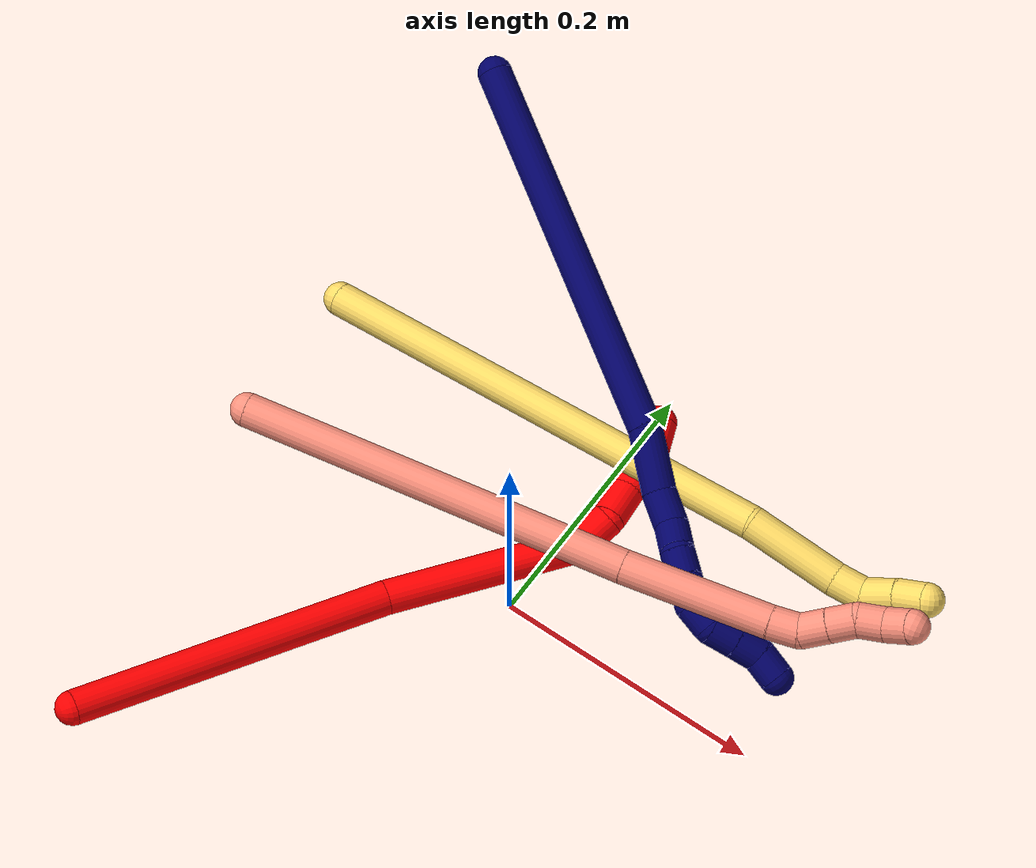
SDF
<sdf version="1.7">
 <world name="default">
  <model name="2">
   <static>0</static>
   <link name="2">
    <collision name="collision-cylinder-e_1_1_4">
     <pose>0.003135 0.002374 -0.119457 -3.12172 0.026232 -1.84513</pose>
     <geometry><cylinder><radius>0.0125</radius><length>0.239044</length></cylinder></geometry>
     <surface>
      <friction><ode><mu>1.16</mu><mu2>1.16</mu2><slip1>0</slip1><slip2>0</slip2></ode></friction>
      <contact><ode><kp>1e+06</kp><kd>1</kd><max_vel>0</max_vel><min_depth>0.001</min_depth></ode></contact>
     </surface>
    </collision>
    <visual name="visual-cylinder-e_1_1_4">
     <pose>0.003135 0.002374 -0.119457 -3.12172 0.026232 -1.84513</pose>
     <geometry><cylinder><radius>0.0125</radius><length>0.239044</length></cylinder></geometry>
     <material><ambient>1 0 0 1</ambient></material>
    </visual>
    <collision name="collision-cylinder-e_2_4_5">
     <pose>0.021558 0.000633 -0.308298 3.08235 0.216504 2.60927</pose>
     <geometry><cylinder><radius>0.0125</radius><length>0.142333</length></cylinder></geometry>
     <surface>
      <friction><ode><mu>1.16</mu><mu2>1.16</mu2><slip1>0</slip1><slip2>0</slip2></ode></friction>
      <contact><ode><kp>1e+06</kp><kd>1</kd><max_vel>0</max_vel><min_depth>0.001</min_depth></ode></contact>
     </surface>
    </collision>
    <visual name="visual-cylinder-e_2_4_5">
     <pose>0.021558 0.000633 -0.308298 3.08235 0.216504 2.60927</pose>
     <geometry><cylinder><radius>0.0125</radius><length>0.142333</length></cylinder></geometry>
     <material><ambient>1 0 0 1</ambient></material>
    </visual>
    <collision name="collision-cylinder-e_3_5_6">
     <pose>0.040534 0.00211 -0.390191 -2.7212 0.26295 -1.10974</pose>
     <geometry><cylinder><radius>0.0125</radius><length>0.02838</length></cylinder></geometry>
     <surface>
      <friction><ode><mu>1.16</mu><mu2>1.16</mu2><slip1>0</slip1><slip2>0</slip2></ode></friction>
      <contact><ode><kp>1e+06</kp><kd>1</kd><max_vel>0</max_vel><min_depth>0.001</min_depth></ode></contact>
     </surface>
    </collision>
    <visual name="visual-cylinder-e_3_5_6">
     <pose>0.040534 0.00211 -0.390191 -2.7212 0.26295 -1.10974</pose>
     <geometry><cylinder><radius>0.0125</radius><length>0.02838</length></cylinder></geometry>
     <material><ambient>1 0 0 1</ambient></material>
    </visual>
    <collision name="collision-cylinder-e_4_6_7">
     <pose>0.041151 0.014997 -0.413981 -2.56757 -0.22473 0.730309</pose>
     <geometry><cylinder><radius>0.0125</radius><length>0.027562</length></cylinder></geometry>
     <surface>
      <friction><ode><mu>1.16</mu><mu2>1.16</mu2><slip1>0</slip1><slip2>0</slip2></ode></friction>
      <contact><ode><kp>1e+06</kp><kd>1</kd><max_vel>0</max_vel><min_depth>0.001</min_depth></ode></contact>
     </surface>
    </collision>
    <visual name="visual-cylinder-e_4_6_7">
     <pose>0.041151 0.014997 -0.413981 -2.56757 -0.22473 0.730309</pose>
     <geometry><cylinder><radius>0.0125</radius><length>0.027562</length></cylinder></geometry>
     <material><ambient>1 0 0 1</ambient></material>
    </visual>
    <collision name="collision-cylinder-e_5_7_8">
     <pose>0.036769 0.027801 -0.433629 -2.55933 -0.130137 0.428248</pose>
     <geometry><cylinder><radius>0.0125</radius><length>0.020207</length></cylinder></geometry>
     <surface>
      <friction><ode><mu>1.16</mu><mu2>1.16</mu2><slip1>0</slip1><slip2>0</slip2></ode></friction>
      <contact><ode><kp>1e+06</kp><kd>1</kd><max_vel>0</max_vel><min_depth>0.001</min_depth></ode></contact>
     </surface>
    </collision>
    <visual name="visual-cylinder-e_5_7_8">
     <pose>0.036769 0.027801 -0.433629 -2.55933 -0.130137 0.428248</pose>
     <geometry><cylinder><radius>0.0125</radius><length>0.020207</length></cylinder></geometry>
     <material><ambient>1 0 0 1</ambient></material>
    </visual>
    <collision name="collision-cylinder-e_6_8_9">
     <pose>0.032513 0.039798 -0.450021 -2.46173 -0.278014 0.753425</pose>
     <geometry><cylinder><radius>0.0125</radius><length>0.021462</length></cylinder></geometry>
     <surface>
      <friction><ode><mu>1.16</mu><mu2>1.16</mu2><slip1>0</slip1><slip2>0</slip2></ode></friction>
      <contact><ode><kp>1e+06</kp><kd>1</kd><max_vel>0</max_vel><min_depth>0.001</min_depth></ode></contact>
     </surface>
    </collision>
    <visual name="visual-cylinder-e_6_8_9">
     <pose>0.032513 0.039798 -0.450021 -2.46173 -0.278014 0.753425</pose>
     <geometry><cylinder><radius>0.0125</radius><length>0.021462</length></cylinder></geometry>
     <material><ambient>1 0 0 1</ambient></material>
    </visual>
    <collision name="collision-cylinder-e_7_9_2">
     <pose>0.027545 0.054251 -0.464589 -2.25842 -0.19377 0.405542</pose>
     <geometry><cylinder><radius>0.0125</radius><length>0.021012</length></cylinder></geometry>
     <surface>
      <friction><ode><mu>1.16</mu><mu2>1.16</mu2><slip1>0</slip1><slip2>0</slip2></ode></friction>
      <contact><ode><kp>1e+06</kp><kd>1</kd><max_vel>0</max_vel><min_depth>0.001</min_depth></ode></contact>
     </surface>
    </collision>
    <visual name="visual-cylinder-e_7_9_2">
     <pose>0.027545 0.054251 -0.464589 -2.25842 -0.19377 0.405542</pose>
     <geometry><cylinder><radius>0.0125</radius><length>0.021012</length></cylinder></geometry>
     <material><ambient>1 0 0 1</ambient></material>
    </visual>
    <collision name="collision-sphere-2">
     <pose>0.025522 0.062218 -0.471133 0 -0 0</pose>
     <geometry><sphere><radius>0.0125</radius></sphere></geometry>
     <surface>
      <friction><ode><mu>1.16</mu><mu2>1.16</mu2><slip1>0</slip1><slip2>0</slip2></ode></friction>
      <contact><ode><kp>1e+06</kp><kd>1</kd><max_vel>0</max_vel><min_depth>0.001</min_depth></ode></contact>
     </surface>
    </collision>
    <visual name="visual-sphere-2">
     <pose>0.025522 0.062218 -0.471133 0 -0 0</pose>
     <geometry><sphere><radius>0.0125</radius></sphere></geometry>
     <material><ambient>1 0 0 1</ambient></material>
    </visual>
    <collision name="collision-sphere-9">
     <pose>0.029568 0.046285 -0.458046 0 -0 0</pose>
     <geometry><sphere><radius>0.0125</radius></sphere></geometry>
     <surface>
      <friction><ode><mu>1.16</mu><mu2>1.16</mu2><slip1>0</slip1><slip2>0</slip2></ode></friction>
      <contact><ode><kp>1e+06</kp><kd>1</kd><max_vel>0</max_vel><min_depth>0.001</min_depth></ode></contact>
     </surface>
    </collision>
    <visual name="visual-sphere-9">
     <pose>0.029568 0.046285 -0.458046 0 -0 0</pose>
     <geometry><sphere><radius>0.0125</radius></sphere></geometry>
     <material><ambient>1 0 0 1</ambient></material>
    </visual>
    <collision name="collision-sphere-4">
     <pose>0.00627 0.004748 -0.238915 0 -0 0</pose>
     <geometry><sphere><radius>0.0125</radius></sphere></geometry>
     <surface>
      <friction><ode><mu>1.16</mu><mu2>1.16</mu2><slip1>0</slip1><slip2>0</slip2></ode></friction>
      <contact><ode><kp>1e+06</kp><kd>1</kd><max_vel>0</max_vel><min_depth>0.001</min_depth></ode></contact>
     </surface>
    </collision>
    <visual name="visual-sphere-4">
     <pose>0.00627 0.004748 -0.238915 0 -0 0</pose>
     <geometry><sphere><radius>0.0125</radius></sphere></geometry>
     <material><ambient>1 0 0 1</ambient></material>
    </visual>
    <collision name="collision-sphere-1">
     <geometry><sphere><radius>0.0125</radius></sphere></geometry>
     <surface>
      <friction><ode><mu>1.16</mu><mu2>1.16</mu2><slip1>0</slip1><slip2>0</slip2></ode></friction>
      <contact><ode><kp>1e+06</kp><kd>1</kd><max_vel>0</max_vel><min_depth>0.001</min_depth></ode></contact>
     </surface>
    </collision>
    <visual name="visual-sphere-1">
     <geometry><sphere><radius>0.0125</radius></sphere></geometry>
     <material><ambient>1 0 0 1</ambient></material>
    </visual>
    <collision name="collision-sphere-8">
     <pose>0.035458 0.03331 -0.441997 0 -0 0</pose>
     <geometry><sphere><radius>0.0125</radius></sphere></geometry>
     <surface>
      <friction><ode><mu>1.16</mu><mu2>1.16</mu2><slip1>0</slip1><slip2>0</slip2></ode></friction>
      <contact><ode><kp>1e+06</kp><kd>1</kd><max_vel>0</max_vel><min_depth>0.001</min_depth></ode></contact>
     </surface>
    </collision>
    <visual name="visual-sphere-8">
     <pose>0.035458 0.03331 -0.441997 0 -0 0</pose>
     <geometry><sphere><radius>0.0125</radius></sphere></geometry>
     <material><ambient>1 0 0 1</ambient></material>
    </visual>
    <collision name="collision-sphere-5">
     <pose>0.036845 -0.003482 -0.377681 0 -0 0</pose>
     <geometry><sphere><radius>0.0125</radius></sphere></geometry>
     <surface>
      <friction><ode><mu>1.16</mu><mu2>1.16</mu2><slip1>0</slip1><slip2>0</slip2></ode></friction>
      <contact><ode><kp>1e+06</kp><kd>1</kd><max_vel>0</max_vel><min_depth>0.001</min_depth></ode></contact>
     </surface>
    </collision>
    <visual name="visual-sphere-5">
     <pose>0.036845 -0.003482 -0.377681 0 -0 0</pose>
     <geometry><sphere><radius>0.0125</radius></sphere></geometry>
     <material><ambient>1 0 0 1</ambient></material>
    </visual>
    <collision name="collision-sphere-6">
     <pose>0.044222 0.007702 -0.4027 0 -0 0</pose>
     <geometry><sphere><radius>0.0125</radius></sphere></geometry>
     <surface>
      <friction><ode><mu>1.16</mu><mu2>1.16</mu2><slip1>0</slip1><slip2>0</slip2></ode></friction>
      <contact><ode><kp>1e+06</kp><kd>1</kd><max_vel>0</max_vel><min_depth>0.001</min_depth></ode></contact>
     </surface>
    </collision>
    <visual name="visual-sphere-6">
     <pose>0.044222 0.007702 -0.4027 0 -0 0</pose>
     <geometry><sphere><radius>0.0125</radius></sphere></geometry>
     <material><ambient>1 0 0 1</ambient></material>
    </visual>
    <collision name="collision-sphere-7">
     <pose>0.03808 0.022292 -0.425262 0 -0 0</pose>
     <geometry><sphere><radius>0.0125</radius></sphere></geometry>
     <surface>
      <friction><ode><mu>1.16</mu><mu2>1.16</mu2><slip1>0</slip1><slip2>0</slip2></ode></friction>
      <contact><ode><kp>1e+06</kp><kd>1</kd><max_vel>0</max_vel><min_depth>0.001</min_depth></ode></contact>
     </surface>
    </collision>
    <visual name="visual-sphere-7">
     <pose>0.03808 0.022292 -0.425262 0 -0 0</pose>
     <geometry><sphere><radius>0.0125</radius></sphere></geometry>
     <material><ambient>1 0 0 1</ambient></material>
    </visual>
    <inertial>
     <pose>0.016244 0.007373 -0.246206 0 -0 0</pose>
     <mass>0.5</mass>
     <inertia>
      <ixx>-0.001489</ixx>
      <ixy>0</ixy>
      <ixz>0</ixz>
      <iyy>-0.000457</iyy>
      <iyz>0</iyz>
      <izz>-0.000133</izz>
     </inertia>
    </inertial>
   </link>
   <pose>-0.186689 -0.257071 0.044498 1.17923 -1.11097 -0.160621</pose>
  </model>
  <model name="5">
   <static>0</static>
   <link name="5">
    <collision name="collision-cylinder-e_1_1_4">
     <pose>0.157678 0.072785 -0.042974 -2.10414 1.07872 -1.61814</pose>
     <geometry><cylinder><radius>0.0125</radius><length>0.35781</length></cylinder></geometry>
     <surface>
      <friction><ode><mu>1.16</mu><mu2>1.16</mu2><slip1>0</slip1><slip2>0</slip2></ode></friction>
      <contact><ode><kp>1e+06</kp><kd>1</kd><max_vel>0</max_vel><min_depth>0.001</min_depth></ode></contact>
     </surface>
    </collision>
    <visual name="visual-cylinder-e_1_1_4">
     <pose>0.157678 0.072785 -0.042974 -2.10414 1.07872 -1.61814</pose>
     <geometry><cylinder><radius>0.0125</radius><length>0.35781</length></cylinder></geometry>
     <material><ambient>1 0.858824 0.4 1</ambient></material>
    </visual>
    <collision name="collision-cylinder-e_2_4_5">
     <pose>0.341885 0.163869 -0.100207 -2.23276 0.852278 -1.4975</pose>
     <geometry><cylinder><radius>0.0125</radius><length>0.070481</length></cylinder></geometry>
     <surface>
      <friction><ode><mu>1.16</mu><mu2>1.16</mu2><slip1>0</slip1><slip2>0</slip2></ode></friction>
      <contact><ode><kp>1e+06</kp><kd>1</kd><max_vel>0</max_vel><min_depth>0.001</min_depth></ode></contact>
     </surface>
    </collision>
    <visual name="visual-cylinder-e_2_4_5">
     <pose>0.341885 0.163869 -0.100207 -2.23276 0.852278 -1.4975</pose>
     <geometry><cylinder><radius>0.0125</radius><length>0.070481</length></cylinder></geometry>
     <material><ambient>1 0.858824 0.4 1</ambient></material>
    </visual>
    <collision name="collision-cylinder-e_3_5_6">
     <pose>0.377951 0.188121 -0.117872 -2.09036 0.947346 -1.44749</pose>
     <geometry><cylinder><radius>0.0125</radius><length>0.023496</length></cylinder></geometry>
     <surface>
      <friction><ode><mu>1.16</mu><mu2>1.16</mu2><slip1>0</slip1><slip2>0</slip2></ode></friction>
      <contact><ode><kp>1e+06</kp><kd>1</kd><max_vel>0</max_vel><min_depth>0.001</min_depth></ode></contact>
     </surface>
    </collision>
    <visual name="visual-cylinder-e_3_5_6">
     <pose>0.377951 0.188121 -0.117872 -2.09036 0.947346 -1.44749</pose>
     <geometry><cylinder><radius>0.0125</radius><length>0.023496</length></cylinder></geometry>
     <material><ambient>1 0.858824 0.4 1</ambient></material>
    </visual>
    <collision name="collision-cylinder-e_4_6_7">
     <pose>0.398675 0.199746 -0.118481 -1.11269 1.05634 -0.696129</pose>
     <geometry><cylinder><radius>0.0125</radius><length>0.025699</length></cylinder></geometry>
     <surface>
      <friction><ode><mu>1.16</mu><mu2>1.16</mu2><slip1>0</slip1><slip2>0</slip2></ode></friction>
      <contact><ode><kp>1e+06</kp><kd>1</kd><max_vel>0</max_vel><min_depth>0.001</min_depth></ode></contact>
     </surface>
    </collision>
    <visual name="visual-cylinder-e_4_6_7">
     <pose>0.398675 0.199746 -0.118481 -1.11269 1.05634 -0.696129</pose>
     <geometry><cylinder><radius>0.0125</radius><length>0.025699</length></cylinder></geometry>
     <material><ambient>1 0.858824 0.4 1</ambient></material>
    </visual>
    <collision name="collision-cylinder-e_5_7_2">
     <pose>0.420102 0.209905 -0.114378 -1.28745 1.14252 -0.898754</pose>
     <geometry><cylinder><radius>0.0125</radius><length>0.022514</length></cylinder></geometry>
     <surface>
      <friction><ode><mu>1.16</mu><mu2>1.16</mu2><slip1>0</slip1><slip2>0</slip2></ode></friction>
      <contact><ode><kp>1e+06</kp><kd>1</kd><max_vel>0</max_vel><min_depth>0.001</min_depth></ode></contact>
     </surface>
    </collision>
    <visual name="visual-cylinder-e_5_7_2">
     <pose>0.420102 0.209905 -0.114378 -1.28745 1.14252 -0.898754</pose>
     <geometry><cylinder><radius>0.0125</radius><length>0.022514</length></cylinder></geometry>
     <material><ambient>1 0.858824 0.4 1</ambient></material>
    </visual>
    <collision name="collision-sphere-2">
     <pose>0.430342 0.214394 -0.113071 0 -0 0</pose>
     <geometry><sphere><radius>0.0125</radius></sphere></geometry>
     <surface>
      <friction><ode><mu>1.16</mu><mu2>1.16</mu2><slip1>0</slip1><slip2>0</slip2></ode></friction>
      <contact><ode><kp>1e+06</kp><kd>1</kd><max_vel>0</max_vel><min_depth>0.001</min_depth></ode></contact>
     </surface>
    </collision>
    <visual name="visual-sphere-2">
     <pose>0.430342 0.214394 -0.113071 0 -0 0</pose>
     <geometry><sphere><radius>0.0125</radius></sphere></geometry>
     <material><ambient>1 0.858824 0.4 1</ambient></material>
    </visual>
    <collision name="collision-sphere-7">
     <pose>0.409862 0.205416 -0.115685 0 -0 0</pose>
     <geometry><sphere><radius>0.0125</radius></sphere></geometry>
     <surface>
      <friction><ode><mu>1.16</mu><mu2>1.16</mu2><slip1>0</slip1><slip2>0</slip2></ode></friction>
      <contact><ode><kp>1e+06</kp><kd>1</kd><max_vel>0</max_vel><min_depth>0.001</min_depth></ode></contact>
     </surface>
    </collision>
    <visual name="visual-sphere-7">
     <pose>0.409862 0.205416 -0.115685 0 -0 0</pose>
     <geometry><sphere><radius>0.0125</radius></sphere></geometry>
     <material><ambient>1 0.858824 0.4 1</ambient></material>
    </visual>
    <collision name="collision-sphere-6">
     <pose>0.387489 0.194075 -0.121277 0 -0 0</pose>
     <geometry><sphere><radius>0.0125</radius></sphere></geometry>
     <surface>
      <friction><ode><mu>1.16</mu><mu2>1.16</mu2><slip1>0</slip1><slip2>0</slip2></ode></friction>
      <contact><ode><kp>1e+06</kp><kd>1</kd><max_vel>0</max_vel><min_depth>0.001</min_depth></ode></contact>
     </surface>
    </collision>
    <visual name="visual-sphere-6">
     <pose>0.387489 0.194075 -0.121277 0 -0 0</pose>
     <geometry><sphere><radius>0.0125</radius></sphere></geometry>
     <material><ambient>1 0.858824 0.4 1</ambient></material>
    </visual>
    <collision name="collision-sphere-5">
     <pose>0.368413 0.182167 -0.114466 0 -0 0</pose>
     <geometry><sphere><radius>0.0125</radius></sphere></geometry>
     <surface>
      <friction><ode><mu>1.16</mu><mu2>1.16</mu2><slip1>0</slip1><slip2>0</slip2></ode></friction>
      <contact><ode><kp>1e+06</kp><kd>1</kd><max_vel>0</max_vel><min_depth>0.001</min_depth></ode></contact>
     </surface>
    </collision>
    <visual name="visual-sphere-5">
     <pose>0.368413 0.182167 -0.114466 0 -0 0</pose>
     <geometry><sphere><radius>0.0125</radius></sphere></geometry>
     <material><ambient>1 0.858824 0.4 1</ambient></material>
    </visual>
    <collision name="collision-sphere-1">
     <geometry><sphere><radius>0.0125</radius></sphere></geometry>
     <surface>
      <friction><ode><mu>1.16</mu><mu2>1.16</mu2><slip1>0</slip1><slip2>0</slip2></ode></friction>
      <contact><ode><kp>1e+06</kp><kd>1</kd><max_vel>0</max_vel><min_depth>0.001</min_depth></ode></contact>
     </surface>
    </collision>
    <visual name="visual-sphere-1">
     <geometry><sphere><radius>0.0125</radius></sphere></geometry>
     <material><ambient>1 0.858824 0.4 1</ambient></material>
    </visual>
    <collision name="collision-sphere-4">
     <pose>0.315356 0.145571 -0.085948 0 -0 0</pose>
     <geometry><sphere><radius>0.0125</radius></sphere></geometry>
     <surface>
      <friction><ode><mu>1.16</mu><mu2>1.16</mu2><slip1>0</slip1><slip2>0</slip2></ode></friction>
      <contact><ode><kp>1e+06</kp><kd>1</kd><max_vel>0</max_vel><min_depth>0.001</min_depth></ode></contact>
     </surface>
    </collision>
    <visual name="visual-sphere-4">
     <pose>0.315356 0.145571 -0.085948 0 -0 0</pose>
     <geometry><sphere><radius>0.0125</radius></sphere></geometry>
     <material><ambient>1 0.858824 0.4 1</ambient></material>
    </visual>
    <inertial>
     <pose>0.218199 0.103744 -0.061658 0 -0 0</pose>
     <mass>0.5</mass>
     <inertia>
      <ixx>-0.001881</ixx>
      <ixy>0</ixy>
      <ixz>0</ixz>
      <iyy>0.001204</iyy>
      <iyz>0</iyz>
      <izz>-0.004993</izz>
     </inertia>
    </inertial>
   </link>
   <pose>-0.241169 0.126674 0.012515 -0.580197 -0.553163 -0.196359</pose>
  </model>
  <model name="7">
   <static>0</static>
   <link name="7">
    <collision name="collision-cylinder-e_1_1_4">
     <pose>0.119876 -0.076515 -0.005884 1.64754 1.00136 1.06737</pose>
     <geometry><cylinder><radius>0.0125</radius><length>0.28467</length></cylinder></geometry>
     <surface>
      <friction><ode><mu>1.16</mu><mu2>1.16</mu2><slip1>0</slip1><slip2>0</slip2></ode></friction>
      <contact><ode><kp>1e+06</kp><kd>1</kd><max_vel>0</max_vel><min_depth>0.001</min_depth></ode></contact>
     </surface>
    </collision>
    <visual name="visual-cylinder-e_1_1_4">
     <pose>0.119876 -0.076515 -0.005884 1.64754 1.00136 1.06737</pose>
     <geometry><cylinder><radius>0.0125</radius><length>0.28467</length></cylinder></geometry>
     <material><ambient>0.003922 0 0.403922 1</ambient></material>
    </visual>
    <collision name="collision-cylinder-e_2_4_5">
     <pose>0.259409 -0.164169 -0.017809 2.06777 0.998184 1.48296</pose>
     <geometry><cylinder><radius>0.0125</radius><length>0.046777</length></cylinder></geometry>
     <surface>
      <friction><ode><mu>1.16</mu><mu2>1.16</mu2><slip1>0</slip1><slip2>0</slip2></ode></friction>
      <contact><ode><kp>1e+06</kp><kd>1</kd><max_vel>0</max_vel><min_depth>0.001</min_depth></ode></contact>
     </surface>
    </collision>
    <visual name="visual-cylinder-e_2_4_5">
     <pose>0.259409 -0.164169 -0.017809 2.06777 0.998184 1.48296</pose>
     <geometry><cylinder><radius>0.0125</radius><length>0.046777</length></cylinder></geometry>
     <material><ambient>0.003922 0 0.403922 1</ambient></material>
    </visual>
    <collision name="collision-cylinder-e_3_5_6">
     <pose>0.289474 -0.183106 -0.024623 1.66949 0.925463 1.00675</pose>
     <geometry><cylinder><radius>0.0125</radius><length>0.026054</length></cylinder></geometry>
     <surface>
      <friction><ode><mu>1.16</mu><mu2>1.16</mu2><slip1>0</slip1><slip2>0</slip2></ode></friction>
      <contact><ode><kp>1e+06</kp><kd>1</kd><max_vel>0</max_vel><min_depth>0.001</min_depth></ode></contact>
     </surface>
    </collision>
    <visual name="visual-cylinder-e_3_5_6">
     <pose>0.289474 -0.183106 -0.024623 1.66949 0.925463 1.00675</pose>
     <geometry><cylinder><radius>0.0125</radius><length>0.026054</length></cylinder></geometry>
     <material><ambient>0.003922 0 0.403922 1</ambient></material>
    </visual>
    <collision name="collision-cylinder-e_4_6_7">
     <pose>0.305885 -0.200119 -0.025644 1.59775 0.577268 0.592146</pose>
     <geometry><cylinder><radius>0.0125</radius><length>0.022005</length></cylinder></geometry>
     <surface>
      <friction><ode><mu>1.16</mu><mu2>1.16</mu2><slip1>0</slip1><slip2>0</slip2></ode></friction>
      <contact><ode><kp>1e+06</kp><kd>1</kd><max_vel>0</max_vel><min_depth>0.001</min_depth></ode></contact>
     </surface>
    </collision>
    <visual name="visual-cylinder-e_4_6_7">
     <pose>0.305885 -0.200119 -0.025644 1.59775 0.577268 0.592146</pose>
     <geometry><cylinder><radius>0.0125</radius><length>0.022005</length></cylinder></geometry>
     <material><ambient>0.003922 0 0.403922 1</ambient></material>
    </visual>
    <collision name="collision-cylinder-e_5_7_8">
     <pose>0.319654 -0.215706 -0.027107 1.75924 0.87492 1.02903</pose>
     <geometry><cylinder><radius>0.0125</radius><length>0.020234</length></cylinder></geometry>
     <surface>
      <friction><ode><mu>1.16</mu><mu2>1.16</mu2><slip1>0</slip1><slip2>0</slip2></ode></friction>
      <contact><ode><kp>1e+06</kp><kd>1</kd><max_vel>0</max_vel><min_depth>0.001</min_depth></ode></contact>
     </surface>
    </collision>
    <visual name="visual-cylinder-e_5_7_8">
     <pose>0.319654 -0.215706 -0.027107 1.75924 0.87492 1.02903</pose>
     <geometry><cylinder><radius>0.0125</radius><length>0.020234</length></cylinder></geometry>
     <material><ambient>0.003922 0 0.403922 1</ambient></material>
    </visual>
    <collision name="collision-cylinder-e_6_8_9">
     <pose>0.334784 -0.228818 -0.029481 1.74103 0.822284 0.954833</pose>
     <geometry><cylinder><radius>0.0125</radius><length>0.020103</length></cylinder></geometry>
     <surface>
      <friction><ode><mu>1.16</mu><mu2>1.16</mu2><slip1>0</slip1><slip2>0</slip2></ode></friction>
      <contact><ode><kp>1e+06</kp><kd>1</kd><max_vel>0</max_vel><min_depth>0.001</min_depth></ode></contact>
     </surface>
    </collision>
    <visual name="visual-cylinder-e_6_8_9">
     <pose>0.334784 -0.228818 -0.029481 1.74103 0.822284 0.954833</pose>
     <geometry><cylinder><radius>0.0125</radius><length>0.020103</length></cylinder></geometry>
     <material><ambient>0.003922 0 0.403922 1</ambient></material>
    </visual>
    <collision name="collision-cylinder-e_7_9_10">
     <pose>0.351388 -0.238995 -0.028868 1.09473 1.17458 0.770812</pose>
     <geometry><cylinder><radius>0.0125</radius><length>0.02003</length></cylinder></geometry>
     <surface>
      <friction><ode><mu>1.16</mu><mu2>1.16</mu2><slip1>0</slip1><slip2>0</slip2></ode></friction>
      <contact><ode><kp>1e+06</kp><kd>1</kd><max_vel>0</max_vel><min_depth>0.001</min_depth></ode></contact>
     </surface>
    </collision>
    <visual name="visual-cylinder-e_7_9_10">
     <pose>0.351388 -0.238995 -0.028868 1.09473 1.17458 0.770812</pose>
     <geometry><cylinder><radius>0.0125</radius><length>0.02003</length></cylinder></geometry>
     <material><ambient>0.003922 0 0.403922 1</ambient></material>
    </visual>
    <collision name="collision-cylinder-e_8_10_11">
     <pose>0.369855 -0.241629 -0.023278 -0.207003 1.1707 -0.137486</pose>
     <geometry><cylinder><radius>0.0125</radius><length>0.020039</length></cylinder></geometry>
     <surface>
      <friction><ode><mu>1.16</mu><mu2>1.16</mu2><slip1>0</slip1><slip2>0</slip2></ode></friction>
      <contact><ode><kp>1e+06</kp><kd>1</kd><max_vel>0</max_vel><min_depth>0.001</min_depth></ode></contact>
     </surface>
    </collision>
    <visual name="visual-cylinder-e_8_10_11">
     <pose>0.369855 -0.241629 -0.023278 -0.207003 1.1707 -0.137486</pose>
     <geometry><cylinder><radius>0.0125</radius><length>0.020039</length></cylinder></geometry>
     <material><ambient>0.003922 0 0.403922 1</ambient></material>
    </visual>
    <collision name="collision-cylinder-e_9_11_12">
     <pose>0.38836 -0.239982 -0.015794 -0.226555 1.1857 -0.152985</pose>
     <geometry><cylinder><radius>0.0125</radius><length>0.02002</length></cylinder></geometry>
     <surface>
      <friction><ode><mu>1.16</mu><mu2>1.16</mu2><slip1>0</slip1><slip2>0</slip2></ode></friction>
      <contact><ode><kp>1e+06</kp><kd>1</kd><max_vel>0</max_vel><min_depth>0.001</min_depth></ode></contact>
     </surface>
    </collision>
    <visual name="visual-cylinder-e_9_11_12">
     <pose>0.38836 -0.239982 -0.015794 -0.226555 1.1857 -0.152985</pose>
     <geometry><cylinder><radius>0.0125</radius><length>0.02002</length></cylinder></geometry>
     <material><ambient>0.003922 0 0.403922 1</ambient></material>
    </visual>
    <collision name="collision-cylinder-e_10_12_2">
     <pose>0.407202 -0.241918 -0.01092 1.16027 1.26381 0.894634</pose>
     <geometry><cylinder><radius>0.0125</radius><length>0.020069</length></cylinder></geometry>
     <surface>
      <friction><ode><mu>1.16</mu><mu2>1.16</mu2><slip1>0</slip1><slip2>0</slip2></ode></friction>
      <contact><ode><kp>1e+06</kp><kd>1</kd><max_vel>0</max_vel><min_depth>0.001</min_depth></ode></contact>
     </surface>
    </collision>
    <visual name="visual-cylinder-e_10_12_2">
     <pose>0.407202 -0.241918 -0.01092 1.16027 1.26381 0.894634</pose>
     <geometry><cylinder><radius>0.0125</radius><length>0.020069</length></cylinder></geometry>
     <material><ambient>0.003922 0 0.403922 1</ambient></material>
    </visual>
    <collision name="collision-sphere-2">
     <pose>0.416767 -0.244698 -0.00971 0 -0 0</pose>
     <geometry><sphere><radius>0.0125</radius></sphere></geometry>
     <surface>
      <friction><ode><mu>1.16</mu><mu2>1.16</mu2><slip1>0</slip1><slip2>0</slip2></ode></friction>
      <contact><ode><kp>1e+06</kp><kd>1</kd><max_vel>0</max_vel><min_depth>0.001</min_depth></ode></contact>
     </surface>
    </collision>
    <visual name="visual-sphere-2">
     <pose>0.416767 -0.244698 -0.00971 0 -0 0</pose>
     <geometry><sphere><radius>0.0125</radius></sphere></geometry>
     <material><ambient>0.003922 0 0.403922 1</ambient></material>
    </visual>
    <collision name="collision-sphere-12">
     <pose>0.397636 -0.239137 -0.01213 0 -0 0</pose>
     <geometry><sphere><radius>0.0125</radius></sphere></geometry>
     <surface>
      <friction><ode><mu>1.16</mu><mu2>1.16</mu2><slip1>0</slip1><slip2>0</slip2></ode></friction>
      <contact><ode><kp>1e+06</kp><kd>1</kd><max_vel>0</max_vel><min_depth>0.001</min_depth></ode></contact>
     </surface>
    </collision>
    <visual name="visual-sphere-12">
     <pose>0.397636 -0.239137 -0.01213 0 -0 0</pose>
     <geometry><sphere><radius>0.0125</radius></sphere></geometry>
     <material><ambient>0.003922 0 0.403922 1</ambient></material>
    </visual>
    <collision name="collision-sphere-11">
     <pose>0.379083 -0.240827 -0.019458 0 -0 0</pose>
     <geometry><sphere><radius>0.0125</radius></sphere></geometry>
     <surface>
      <friction><ode><mu>1.16</mu><mu2>1.16</mu2><slip1>0</slip1><slip2>0</slip2></ode></friction>
      <contact><ode><kp>1e+06</kp><kd>1</kd><max_vel>0</max_vel><min_depth>0.001</min_depth></ode></contact>
     </surface>
    </collision>
    <visual name="visual-sphere-11">
     <pose>0.379083 -0.240827 -0.019458 0 -0 0</pose>
     <geometry><sphere><radius>0.0125</radius></sphere></geometry>
     <material><ambient>0.003922 0 0.403922 1</ambient></material>
    </visual>
    <collision name="collision-sphere-10">
     <pose>0.360627 -0.242431 -0.027097 0 -0 0</pose>
     <geometry><sphere><radius>0.0125</radius></sphere></geometry>
     <surface>
      <friction><ode><mu>1.16</mu><mu2>1.16</mu2><slip1>0</slip1><slip2>0</slip2></ode></friction>
      <contact><ode><kp>1e+06</kp><kd>1</kd><max_vel>0</max_vel><min_depth>0.001</min_depth></ode></contact>
     </surface>
    </collision>
    <visual name="visual-sphere-10">
     <pose>0.360627 -0.242431 -0.027097 0 -0 0</pose>
     <geometry><sphere><radius>0.0125</radius></sphere></geometry>
     <material><ambient>0.003922 0 0.403922 1</ambient></material>
    </visual>
    <collision name="collision-sphere-9">
     <pose>0.342148 -0.23556 -0.03064 0 -0 0</pose>
     <geometry><sphere><radius>0.0125</radius></sphere></geometry>
     <surface>
      <friction><ode><mu>1.16</mu><mu2>1.16</mu2><slip1>0</slip1><slip2>0</slip2></ode></friction>
      <contact><ode><kp>1e+06</kp><kd>1</kd><max_vel>0</max_vel><min_depth>0.001</min_depth></ode></contact>
     </surface>
    </collision>
    <visual name="visual-sphere-9">
     <pose>0.342148 -0.23556 -0.03064 0 -0 0</pose>
     <geometry><sphere><radius>0.0125</radius></sphere></geometry>
     <material><ambient>0.003922 0 0.403922 1</ambient></material>
    </visual>
    <collision name="collision-sphere-4">
     <pose>0.239751 -0.15303 -0.011767 0 -0 0</pose>
     <geometry><sphere><radius>0.0125</radius></sphere></geometry>
     <surface>
      <friction><ode><mu>1.16</mu><mu2>1.16</mu2><slip1>0</slip1><slip2>0</slip2></ode></friction>
      <contact><ode><kp>1e+06</kp><kd>1</kd><max_vel>0</max_vel><min_depth>0.001</min_depth></ode></contact>
     </surface>
    </collision>
    <visual name="visual-sphere-4">
     <pose>0.239751 -0.15303 -0.011767 0 -0 0</pose>
     <geometry><sphere><radius>0.0125</radius></sphere></geometry>
     <material><ambient>0.003922 0 0.403922 1</ambient></material>
    </visual>
    <collision name="collision-sphere-1">
     <geometry><sphere><radius>0.0125</radius></sphere></geometry>
     <surface>
      <friction><ode><mu>1.16</mu><mu2>1.16</mu2><slip1>0</slip1><slip2>0</slip2></ode></friction>
      <contact><ode><kp>1e+06</kp><kd>1</kd><max_vel>0</max_vel><min_depth>0.001</min_depth></ode></contact>
     </surface>
    </collision>
    <visual name="visual-sphere-1">
     <geometry><sphere><radius>0.0125</radius></sphere></geometry>
     <material><ambient>0.003922 0 0.403922 1</ambient></material>
    </visual>
    <collision name="collision-sphere-8">
     <pose>0.327419 -0.222077 -0.028322 0 -0 0</pose>
     <geometry><sphere><radius>0.0125</radius></sphere></geometry>
     <surface>
      <friction><ode><mu>1.16</mu><mu2>1.16</mu2><slip1>0</slip1><slip2>0</slip2></ode></friction>
      <contact><ode><kp>1e+06</kp><kd>1</kd><max_vel>0</max_vel><min_depth>0.001</min_depth></ode></contact>
     </surface>
    </collision>
    <visual name="visual-sphere-8">
     <pose>0.327419 -0.222077 -0.028322 0 -0 0</pose>
     <geometry><sphere><radius>0.0125</radius></sphere></geometry>
     <material><ambient>0.003922 0 0.403922 1</ambient></material>
    </visual>
    <collision name="collision-sphere-5">
     <pose>0.279067 -0.175309 -0.023851 0 -0 0</pose>
     <geometry><sphere><radius>0.0125</radius></sphere></geometry>
     <surface>
      <friction><ode><mu>1.16</mu><mu2>1.16</mu2><slip1>0</slip1><slip2>0</slip2></ode></friction>
      <contact><ode><kp>1e+06</kp><kd>1</kd><max_vel>0</max_vel><min_depth>0.001</min_depth></ode></contact>
     </surface>
    </collision>
    <visual name="visual-sphere-5">
     <pose>0.279067 -0.175309 -0.023851 0 -0 0</pose>
     <geometry><sphere><radius>0.0125</radius></sphere></geometry>
     <material><ambient>0.003922 0 0.403922 1</ambient></material>
    </visual>
    <collision name="collision-sphere-6">
     <pose>0.299881 -0.190903 -0.025395 0 -0 0</pose>
     <geometry><sphere><radius>0.0125</radius></sphere></geometry>
     <surface>
      <friction><ode><mu>1.16</mu><mu2>1.16</mu2><slip1>0</slip1><slip2>0</slip2></ode></friction>
      <contact><ode><kp>1e+06</kp><kd>1</kd><max_vel>0</max_vel><min_depth>0.001</min_depth></ode></contact>
     </surface>
    </collision>
    <visual name="visual-sphere-6">
     <pose>0.299881 -0.190903 -0.025395 0 -0 0</pose>
     <geometry><sphere><radius>0.0125</radius></sphere></geometry>
     <material><ambient>0.003922 0 0.403922 1</ambient></material>
    </visual>
    <collision name="collision-sphere-7">
     <pose>0.31189 -0.209335 -0.025892 0 -0 0</pose>
     <geometry><sphere><radius>0.0125</radius></sphere></geometry>
     <surface>
      <friction><ode><mu>1.16</mu><mu2>1.16</mu2><slip1>0</slip1><slip2>0</slip2></ode></friction>
      <contact><ode><kp>1e+06</kp><kd>1</kd><max_vel>0</max_vel><min_depth>0.001</min_depth></ode></contact>
     </surface>
    </collision>
    <visual name="visual-sphere-7">
     <pose>0.31189 -0.209335 -0.025892 0 -0 0</pose>
     <geometry><sphere><radius>0.0125</radius></sphere></geometry>
     <material><ambient>0.003922 0 0.403922 1</ambient></material>
    </visual>
    <inertial>
     <pose>0.208254 -0.133776 -0.01287 0 -0 0</pose>
     <mass>0.5</mass>
     <inertia>
      <ixx>0.001464</ixx>
      <ixy>0</ixy>
      <ixz>0</ixz>
      <iyy>0.002271</iyy>
      <iyz>0</iyz>
      <izz>-0.000599</izz>
     </inertia>
    </inertial>
   </link>
   <pose>-0.217904 0.286955 0.133893 -0.801473 0.632591 -0.134786</pose>
  </model>
  <model name="16">
   <static>0</static>
   <link name="16">
    <collision name="collision-cylinder-e_1_1_4">
     <pose>-0.001445 -0.003799 0.144071 0.026361 -0.010024 -0.000132</pose>
     <geometry><cylinder><radius>0.0125</radius><length>0.288257</length></cylinder></geometry>
     <surface>
      <friction><ode><mu>1.16</mu><mu2>1.16</mu2><slip1>0</slip1><slip2>0</slip2></ode></friction>
      <contact><ode><kp>1e+06</kp><kd>1</kd><max_vel>0</max_vel><min_depth>0.001</min_depth></ode></contact>
     </surface>
    </collision>
    <visual name="visual-cylinder-e_1_1_4">
     <pose>-0.001445 -0.003799 0.144071 0.026361 -0.010024 -0.000132</pose>
     <geometry><cylinder><radius>0.0125</radius><length>0.288257</length></cylinder></geometry>
     <material><ambient>1 0.576471 0.494118 1</ambient></material>
    </visual>
    <collision name="collision-cylinder-e_2_4_5">
     <pose>-0.005091 -0.009683 0.342415 0.038409 -0.040516 -0.000778</pose>
     <geometry><cylinder><radius>0.0125</radius><length>0.108714</length></cylinder></geometry>
     <surface>
      <friction><ode><mu>1.16</mu><mu2>1.16</mu2><slip1>0</slip1><slip2>0</slip2></ode></friction>
      <contact><ode><kp>1e+06</kp><kd>1</kd><max_vel>0</max_vel><min_depth>0.001</min_depth></ode></contact>
     </surface>
    </collision>
    <visual name="visual-cylinder-e_2_4_5">
     <pose>-0.005091 -0.009683 0.342415 0.038409 -0.040516 -0.000778</pose>
     <geometry><cylinder><radius>0.0125</radius><length>0.108714</length></cylinder></geometry>
     <material><ambient>1 0.576471 0.494118 1</ambient></material>
    </visual>
    <collision name="collision-cylinder-e_3_5_6">
     <pose>-0.008511 -0.012284 0.407306 0.0485 -0.114046 -0.002769</pose>
     <geometry><cylinder><radius>0.0125</radius><length>0.021402</length></cylinder></geometry>
     <surface>
      <friction><ode><mu>1.16</mu><mu2>1.16</mu2><slip1>0</slip1><slip2>0</slip2></ode></friction>
      <contact><ode><kp>1e+06</kp><kd>1</kd><max_vel>0</max_vel><min_depth>0.001</min_depth></ode></contact>
     </surface>
    </collision>
    <visual name="visual-cylinder-e_3_5_6">
     <pose>-0.008511 -0.012284 0.407306 0.0485 -0.114046 -0.002769</pose>
     <geometry><cylinder><radius>0.0125</radius><length>0.021402</length></cylinder></geometry>
     <material><ambient>1 0.576471 0.494118 1</ambient></material>
    </visual>
    <collision name="collision-cylinder-e_4_6_7">
     <pose>-0.014355 -0.016865 0.426511 0.442234 -0.453216 -0.103567</pose>
     <geometry><cylinder><radius>0.0125</radius><length>0.021134</length></cylinder></geometry>
     <surface>
      <friction><ode><mu>1.16</mu><mu2>1.16</mu2><slip1>0</slip1><slip2>0</slip2></ode></friction>
      <contact><ode><kp>1e+06</kp><kd>1</kd><max_vel>0</max_vel><min_depth>0.001</min_depth></ode></contact>
     </surface>
    </collision>
    <visual name="visual-cylinder-e_4_6_7">
     <pose>-0.014355 -0.016865 0.426511 0.442234 -0.453216 -0.103567</pose>
     <geometry><cylinder><radius>0.0125</radius><length>0.021134</length></cylinder></geometry>
     <material><ambient>1 0.576471 0.494118 1</ambient></material>
    </visual>
    <collision name="collision-cylinder-e_5_7_8">
     <pose>-0.02341 -0.024693 0.443274 0.431259 -0.457201 -0.101837</pose>
     <geometry><cylinder><radius>0.0125</radius><length>0.020062</length></cylinder></geometry>
     <surface>
      <friction><ode><mu>1.16</mu><mu2>1.16</mu2><slip1>0</slip1><slip2>0</slip2></ode></friction>
      <contact><ode><kp>1e+06</kp><kd>1</kd><max_vel>0</max_vel><min_depth>0.001</min_depth></ode></contact>
     </surface>
    </collision>
    <visual name="visual-cylinder-e_5_7_8">
     <pose>-0.02341 -0.024693 0.443274 0.431259 -0.457201 -0.101837</pose>
     <geometry><cylinder><radius>0.0125</radius><length>0.020062</length></cylinder></geometry>
     <material><ambient>1 0.576471 0.494118 1</ambient></material>
    </visual>
    <collision name="collision-cylinder-e_6_8_9">
     <pose>-0.029999 -0.029721 0.461255 0.128347 -0.215246 -0.013886</pose>
     <geometry><cylinder><radius>0.0125</radius><length>0.020238</length></cylinder></geometry>
     <surface>
      <friction><ode><mu>1.16</mu><mu2>1.16</mu2><slip1>0</slip1><slip2>0</slip2></ode></friction>
      <contact><ode><kp>1e+06</kp><kd>1</kd><max_vel>0</max_vel><min_depth>0.001</min_depth></ode></contact>
     </surface>
    </collision>
    <visual name="visual-cylinder-e_6_8_9">
     <pose>-0.029999 -0.029721 0.461255 0.128347 -0.215246 -0.013886</pose>
     <geometry><cylinder><radius>0.0125</radius><length>0.020238</length></cylinder></geometry>
     <material><ambient>1 0.576471 0.494118 1</ambient></material>
    </visual>
    <collision name="collision-cylinder-e_7_9_2">
     <pose>-0.033082 -0.03613 0.479698 0.537019 -0.091423 -0.025172</pose>
     <geometry><cylinder><radius>0.0125</radius><length>0.020193</length></cylinder></geometry>
     <surface>
      <friction><ode><mu>1.16</mu><mu2>1.16</mu2><slip1>0</slip1><slip2>0</slip2></ode></friction>
      <contact><ode><kp>1e+06</kp><kd>1</kd><max_vel>0</max_vel><min_depth>0.001</min_depth></ode></contact>
     </surface>
    </collision>
    <visual name="visual-cylinder-e_7_9_2">
     <pose>-0.033082 -0.03613 0.479698 0.537019 -0.091423 -0.025172</pose>
     <geometry><cylinder><radius>0.0125</radius><length>0.020193</length></cylinder></geometry>
     <material><ambient>1 0.576471 0.494118 1</ambient></material>
    </visual>
    <collision name="collision-sphere-2">
     <pose>-0.034004 -0.041273 0.488337 0 -0 0</pose>
     <geometry><sphere><radius>0.0125</radius></sphere></geometry>
     <surface>
      <friction><ode><mu>1.16</mu><mu2>1.16</mu2><slip1>0</slip1><slip2>0</slip2></ode></friction>
      <contact><ode><kp>1e+06</kp><kd>1</kd><max_vel>0</max_vel><min_depth>0.001</min_depth></ode></contact>
     </surface>
    </collision>
    <visual name="visual-sphere-2">
     <pose>-0.034004 -0.041273 0.488337 0 -0 0</pose>
     <geometry><sphere><radius>0.0125</radius></sphere></geometry>
     <material><ambient>1 0.576471 0.494118 1</ambient></material>
    </visual>
    <collision name="collision-sphere-9">
     <pose>-0.032161 -0.030986 0.471059 0 -0 0</pose>
     <geometry><sphere><radius>0.0125</radius></sphere></geometry>
     <surface>
      <friction><ode><mu>1.16</mu><mu2>1.16</mu2><slip1>0</slip1><slip2>0</slip2></ode></friction>
      <contact><ode><kp>1e+06</kp><kd>1</kd><max_vel>0</max_vel><min_depth>0.001</min_depth></ode></contact>
     </surface>
    </collision>
    <visual name="visual-sphere-9">
     <pose>-0.032161 -0.030986 0.471059 0 -0 0</pose>
     <geometry><sphere><radius>0.0125</radius></sphere></geometry>
     <material><ambient>1 0.576471 0.494118 1</ambient></material>
    </visual>
    <collision name="collision-sphere-4">
     <pose>-0.002889 -0.007597 0.288142 0 -0 0</pose>
     <geometry><sphere><radius>0.0125</radius></sphere></geometry>
     <surface>
      <friction><ode><mu>1.16</mu><mu2>1.16</mu2><slip1>0</slip1><slip2>0</slip2></ode></friction>
      <contact><ode><kp>1e+06</kp><kd>1</kd><max_vel>0</max_vel><min_depth>0.001</min_depth></ode></contact>
     </surface>
    </collision>
    <visual name="visual-sphere-4">
     <pose>-0.002889 -0.007597 0.288142 0 -0 0</pose>
     <geometry><sphere><radius>0.0125</radius></sphere></geometry>
     <material><ambient>1 0.576471 0.494118 1</ambient></material>
    </visual>
    <collision name="collision-sphere-1">
     <geometry><sphere><radius>0.0125</radius></sphere></geometry>
     <surface>
      <friction><ode><mu>1.16</mu><mu2>1.16</mu2><slip1>0</slip1><slip2>0</slip2></ode></friction>
      <contact><ode><kp>1e+06</kp><kd>1</kd><max_vel>0</max_vel><min_depth>0.001</min_depth></ode></contact>
     </surface>
    </collision>
    <visual name="visual-sphere-1">
     <geometry><sphere><radius>0.0125</radius></sphere></geometry>
     <material><ambient>1 0.576471 0.494118 1</ambient></material>
    </visual>
    <collision name="collision-sphere-8">
     <pose>-0.027838 -0.028456 0.45145 0 -0 0</pose>
     <geometry><sphere><radius>0.0125</radius></sphere></geometry>
     <surface>
      <friction><ode><mu>1.16</mu><mu2>1.16</mu2><slip1>0</slip1><slip2>0</slip2></ode></friction>
      <contact><ode><kp>1e+06</kp><kd>1</kd><max_vel>0</max_vel><min_depth>0.001</min_depth></ode></contact>
     </surface>
    </collision>
    <visual name="visual-sphere-8">
     <pose>-0.027838 -0.028456 0.45145 0 -0 0</pose>
     <geometry><sphere><radius>0.0125</radius></sphere></geometry>
     <material><ambient>1 0.576471 0.494118 1</ambient></material>
    </visual>
    <collision name="collision-sphere-5">
     <pose>-0.007293 -0.011769 0.396687 0 -0 0</pose>
     <geometry><sphere><radius>0.0125</radius></sphere></geometry>
     <surface>
      <friction><ode><mu>1.16</mu><mu2>1.16</mu2><slip1>0</slip1><slip2>0</slip2></ode></friction>
      <contact><ode><kp>1e+06</kp><kd>1</kd><max_vel>0</max_vel><min_depth>0.001</min_depth></ode></contact>
     </surface>
    </collision>
    <visual name="visual-sphere-5">
     <pose>-0.007293 -0.011769 0.396687 0 -0 0</pose>
     <geometry><sphere><radius>0.0125</radius></sphere></geometry>
     <material><ambient>1 0.576471 0.494118 1</ambient></material>
    </visual>
    <collision name="collision-sphere-6">
     <pose>-0.009728 -0.0128 0.417925 0 -0 0</pose>
     <geometry><sphere><radius>0.0125</radius></sphere></geometry>
     <surface>
      <friction><ode><mu>1.16</mu><mu2>1.16</mu2><slip1>0</slip1><slip2>0</slip2></ode></friction>
      <contact><ode><kp>1e+06</kp><kd>1</kd><max_vel>0</max_vel><min_depth>0.001</min_depth></ode></contact>
     </surface>
    </collision>
    <visual name="visual-sphere-6">
     <pose>-0.009728 -0.0128 0.417925 0 -0 0</pose>
     <geometry><sphere><radius>0.0125</radius></sphere></geometry>
     <material><ambient>1 0.576471 0.494118 1</ambient></material>
    </visual>
    <collision name="collision-sphere-7">
     <pose>-0.018982 -0.020931 0.435097 0 -0 0</pose>
     <geometry><sphere><radius>0.0125</radius></sphere></geometry>
     <surface>
      <friction><ode><mu>1.16</mu><mu2>1.16</mu2><slip1>0</slip1><slip2>0</slip2></ode></friction>
      <contact><ode><kp>1e+06</kp><kd>1</kd><max_vel>0</max_vel><min_depth>0.001</min_depth></ode></contact>
     </surface>
    </collision>
    <visual name="visual-sphere-7">
     <pose>-0.018982 -0.020931 0.435097 0 -0 0</pose>
     <geometry><sphere><radius>0.0125</radius></sphere></geometry>
     <material><ambient>1 0.576471 0.494118 1</ambient></material>
    </visual>
    <inertial>
     <pose>-0.0064 -0.009187 0.2488 0 -0 0</pose>
     <mass>0.5</mass>
     <inertia>
      <ixx>0.002122</ixx>
      <ixy>0</ixy>
      <ixz>0</ixz>
      <iyy>0.002121</iyy>
      <iyz>0</iyz>
      <izz>0.000124</izz>
     </inertia>
    </inertial>
   </link>
   <pose>-0.210252 -0.021005 0.0964 -1.61359 0.035195 -1.39315</pose>
  </model>
 </world>
</sdf>
